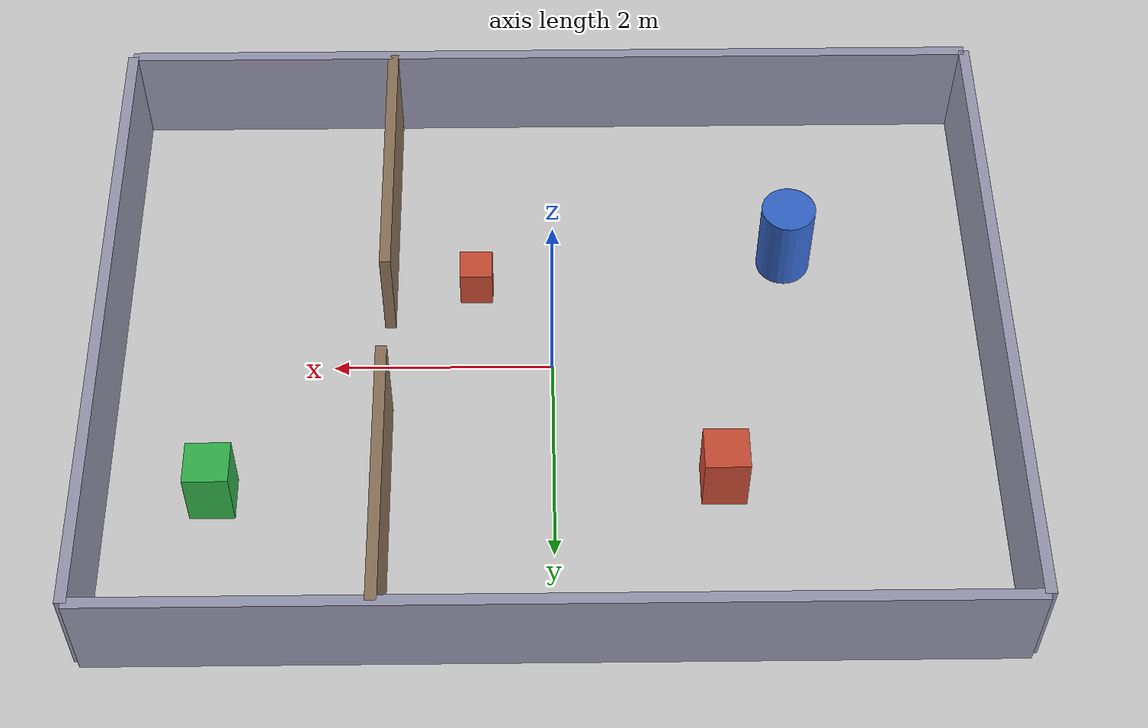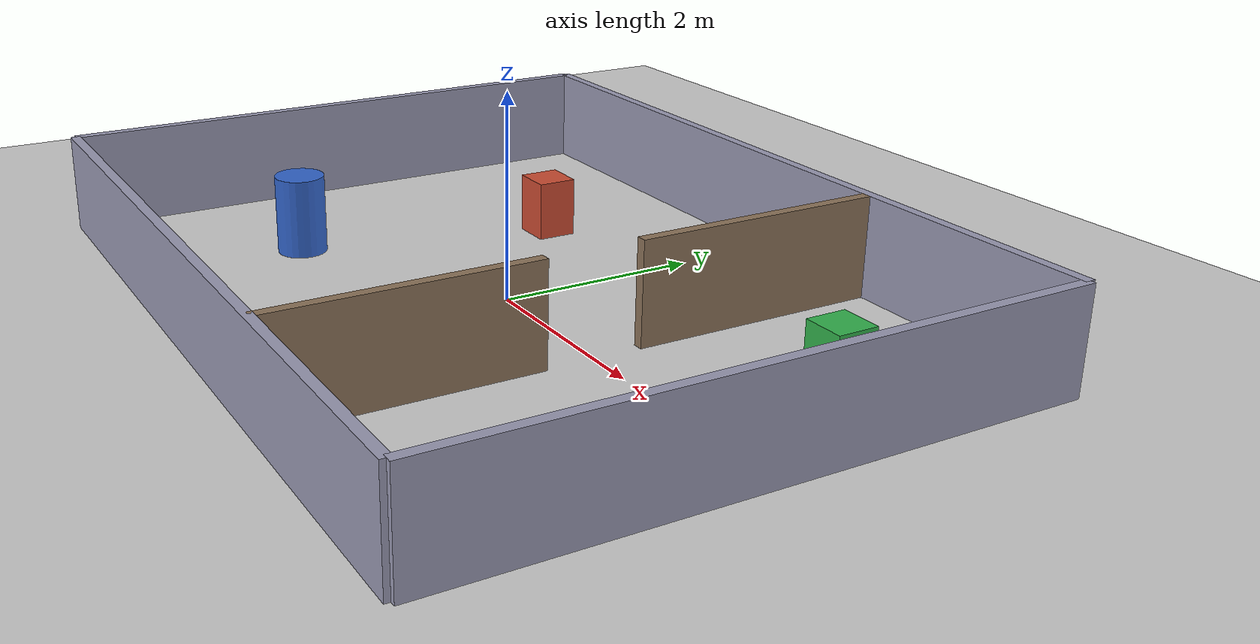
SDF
<?xml version="1.0"?>
<sdf version="1.9">
  <world name="sala">

    <physics name="1ms" type="ignored">
      <max_step_size>0.001</max_step_size>
      <real_time_factor>1.0</real_time_factor>
    </physics>

    <plugin filename="gz-sim-physics-system"
            name="gz::sim::systems::Physics"/>
    <plugin filename="gz-sim-user-commands-system"
            name="gz::sim::systems::UserCommands"/>
    <plugin filename="gz-sim-scene-broadcaster-system"
            name="gz::sim::systems::SceneBroadcaster"/>
    <plugin filename="gz-sim-sensors-system"
            name="gz::sim::systems::Sensors">
      <render_engine>ogre2</render_engine>
    </plugin>

    <light type="directional" name="sun">
      <cast_shadows>true</cast_shadows>
      <pose>0 0 10 0 0 0</pose>
      <diffuse>0.8 0.8 0.8 1</diffuse>
      <specular>0.2 0.2 0.2 1</specular>
      <direction>-0.5 0.1 -0.9</direction>
    </light>

    <model name="ground_plane">
      <static>true</static>
      <link name="link">
        <collision name="collision">
          <geometry><plane><normal>0 0 1</normal><size>100 100</size></plane></geometry>
        </collision>
        <visual name="visual">
          <geometry><plane><normal>0 0 1</normal><size>100 100</size></plane></geometry>
          <material>
            <ambient>0.8 0.8 0.8 1</ambient>
            <diffuse>0.8 0.8 0.8 1</diffuse>
          </material>
        </visual>
      </link>
    </model>

    <!-- ===================== PAREDES EXTERNAS (sala 8×6 m) ===================== -->
    <model name="wall_west">
      <static>true</static>
      <pose>-4 0 0.5 0 0 0</pose>
      <link name="link">
        <collision name="col"><geometry><box><size>0.1 6 1</size></box></geometry></collision>
        <visual name="vis"><geometry><box><size>0.1 6 1</size></box></geometry>
          <material><diffuse>0.6 0.6 0.7 1</diffuse></material></visual>
      </link>
    </model>
    <model name="wall_east">
      <static>true</static>
      <pose>4 0 0.5 0 0 0</pose>
      <link name="link">
        <collision name="col"><geometry><box><size>0.1 6 1</size></box></geometry></collision>
        <visual name="vis"><geometry><box><size>0.1 6 1</size></box></geometry>
          <material><diffuse>0.6 0.6 0.7 1</diffuse></material></visual>
      </link>
    </model>
    <model name="wall_south">
      <static>true</static>
      <pose>0 -3 0.5 0 0 0</pose>
      <link name="link">
        <collision name="col"><geometry><box><size>8 0.1 1</size></box></geometry></collision>
        <visual name="vis"><geometry><box><size>8 0.1 1</size></box></geometry>
          <material><diffuse>0.6 0.6 0.7 1</diffuse></material></visual>
      </link>
    </model>
    <model name="wall_north">
      <static>true</static>
      <pose>0 3 0.5 0 0 0</pose>
      <link name="link">
        <collision name="col"><geometry><box><size>8 0.1 1</size></box></geometry></collision>
        <visual name="vis"><geometry><box><size>8 0.1 1</size></box></geometry>
          <material><diffuse>0.6 0.6 0.7 1</diffuse></material></visual>
      </link>
    </model>

    <!-- ============== DIVISÓRIA com PORTA de 0,93 m (em x=+1.5) ==============
         Vão em y∈[-0.465, +0.465] (largura 0.93). Dois batentes (segmentos). -->
    <model name="door_jamb_south">
      <static>true</static>
      <!-- y de -3 a -0.465 → comprimento 2.535, centro y=-1.7325 -->
      <pose>1.5 -1.7325 0.5 0 0 0</pose>
      <link name="link">
        <collision name="col"><geometry><box><size>0.1 2.535 1</size></box></geometry></collision>
        <visual name="vis"><geometry><box><size>0.1 2.535 1</size></box></geometry>
          <material><diffuse>0.55 0.45 0.35 1</diffuse></material></visual>
      </link>
    </model>
    <model name="door_jamb_north">
      <static>true</static>
      <!-- y de +0.465 a +3 → comprimento 2.535, centro y=+1.7325 -->
      <pose>1.5 1.7325 0.5 0 0 0</pose>
      <link name="link">
        <collision name="col"><geometry><box><size>0.1 2.535 1</size></box></geometry></collision>
        <visual name="vis"><geometry><box><size>0.1 2.535 1</size></box></geometry>
          <material><diffuse>0.55 0.45 0.35 1</diffuse></material></visual>
      </link>
    </model>

    <!-- ===================== OBSTÁCULOS ===================== -->
    <!-- caixa na sala esquerda (fora da linha direta origem→porta) -->
    <model name="obst_box1">
      <static>true</static>
      <pose>-1.5 1.3 0.3 0 0 0</pose>
      <link name="link">
        <collision name="col"><geometry><box><size>0.4 0.4 0.6</size></box></geometry></collision>
        <visual name="vis"><geometry><box><size>0.4 0.4 0.6</size></box></geometry>
          <material><diffuse>0.8 0.3 0.2 1</diffuse></material></visual>
      </link>
    </model>
    <!-- cilindro na sala esquerda -->
    <model name="obst_cyl1">
      <static>true</static>
      <pose>-2.2 -1.2 0.4 0 0 0</pose>
      <link name="link">
        <collision name="col"><geometry><cylinder><radius>0.25</radius><length>0.8</length></cylinder></geometry></collision>
        <visual name="vis"><geometry><cylinder><radius>0.25</radius><length>0.8</length></cylinder></geometry>
          <material><diffuse>0.2 0.4 0.8 1</diffuse></material></visual>
      </link>
    </model>
    <!-- caixa pequena perto da aproximação da porta (deixa a manobra mais difícil) -->
    <model name="obst_box2">
      <static>true</static>
      <pose>0.7 -0.9 0.2 0 0 0</pose>
      <link name="link">
        <collision name="col"><geometry><box><size>0.3 0.3 0.4</size></box></geometry></collision>
        <visual name="vis"><geometry><box><size>0.3 0.3 0.4</size></box></geometry>
          <material><diffuse>0.8 0.3 0.2 1</diffuse></material></visual>
      </link>
    </model>
    <!-- caixa na sala direita (alvo do outro lado da porta) -->
    <model name="obst_box3">
      <static>true</static>
      <pose>3.0 1.4 0.3 0 0 0</pose>
      <link name="link">
        <collision name="col"><geometry><box><size>0.4 0.4 0.6</size></box></geometry></collision>
        <visual name="vis"><geometry><box><size>0.4 0.4 0.6</size></box></geometry>
          <material><diffuse>0.2 0.7 0.3 1</diffuse></material></visual>
      </link>
    </model>

  </world>
</sdf>
